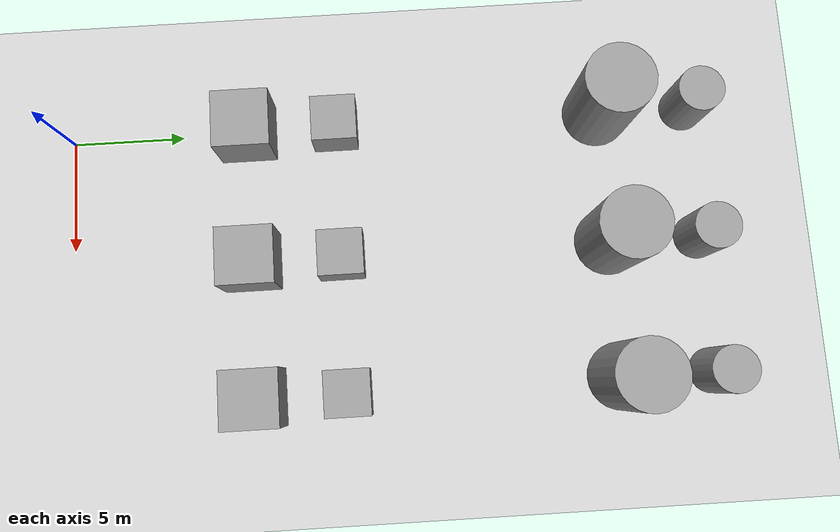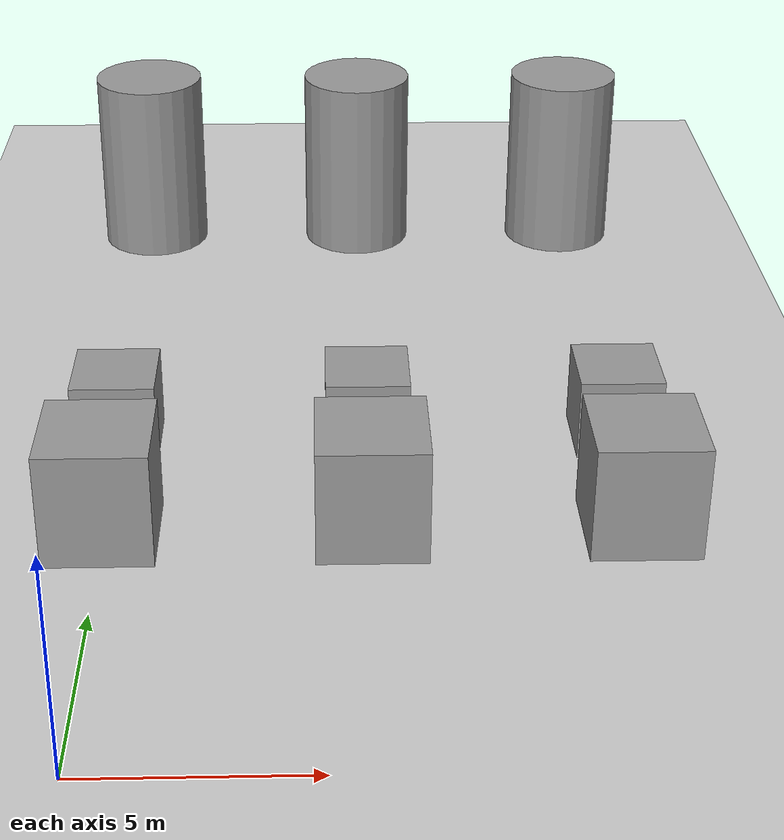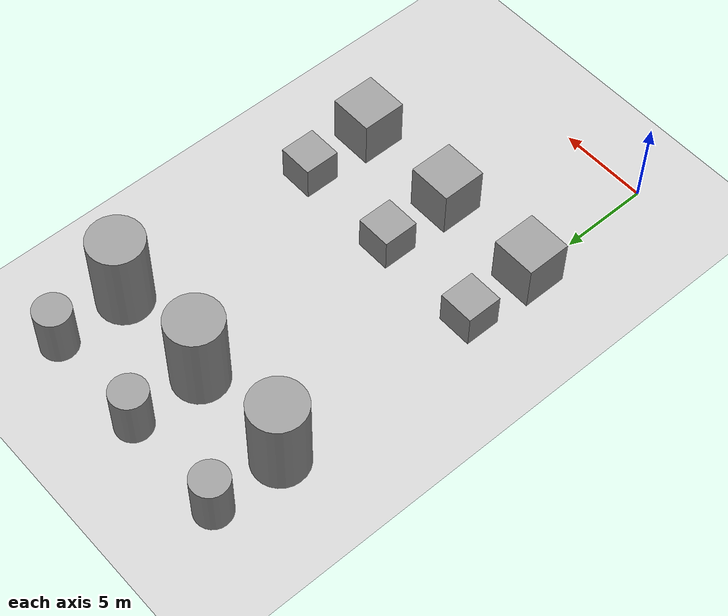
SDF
<sdf version="1.6">
 <world name="default">
  <model name="ground_plane">
   <static>1</static>
   <link name="link">
    <collision name="collision">
     <geometry><plane><normal>0 0 1</normal><size>100 100</size></plane></geometry>
     <surface>
      <contact><collide_bitmask>65535</collide_bitmask></contact>
      <friction><ode><mu>100</mu><mu2>50</mu2></ode></friction>
     </surface>
    </collision>
    <visual name="visual">
     <cast_shadows>0</cast_shadows>
     <geometry><plane><normal>0 0 1</normal><size>100 100</size></plane></geometry>
     <material>
      <script><uri>file://media/materials/scripts/gazebo.material</uri><name>Gazebo/Grey</name></script>
     </material>
    </visual>
   </link>
  </model>
  <light name="sun" type="directional">
   <pose>0 0 10 0 -0 0</pose>
   <diffuse>0.8 0.8 0.8 1</diffuse>
   <specular>0.2 0.2 0.2 1</specular>
   <attenuation>
    <range>1000</range>
    <constant>0.9</constant>
    <linear>0.01</linear>
    <quadratic>0.001</quadratic>
   </attenuation>
   <direction>-0.5 0.1 -0.9</direction>
  </light>
  <scene><shadows>0</shadows><ambient>0.4 0.4 0.4 1</ambient><background>0.7 0.7 0.7 1</background></scene>
  <plugin name="gazebo_octomap" filename="librotors_gazebo_octomap_plugin.so"/>
  <plugin name="ros_interface_plugin" filename="librotors_gazebo_ros_interface_plugin.so"/>
  <physics name="default_physics" default="0" type="ode">
   <max_step_size>0.005</max_step_size>
   <real_time_factor>1</real_time_factor>
   <real_time_update_rate>600</real_time_update_rate>
   <ode>
    <solver>
     <type>quick</type>
     <iters>1000</iters>
     <sor>1.3</sor>
     <use_dynamic_moi_rescaling>0</use_dynamic_moi_rescaling>
    </solver>
    <constraints>
     <cfm>0</cfm>
     <erp>0.2</erp>
     <contact_max_correcting_vel>100</contact_max_correcting_vel>
     <contact_surface_layer>0.001</contact_surface_layer>
    </constraints>
   </ode>
  </physics>
  <gravity>0 0 -9.8</gravity>
  <magnetic_field>6e-06 2.3e-05 -4.2e-05</magnetic_field>
  <atmosphere type="adiabatic"/>
  <audio><device>default</device></audio>
  <spherical_coordinates>
   <surface_model>EARTH_WGS84</surface_model>
   <latitude_deg>0</latitude_deg>
   <longitude_deg>0</longitude_deg>
   <elevation>0</elevation>
   <heading_deg>0</heading_deg>
  </spherical_coordinates>
  <model name="large_box_0">
   <static>1</static>
   <pose>0 8 1.25 0 -0 0</pose>
   <link name="link">
    <inertial>
     <mass>1</mass>
     <inertia><ixx>0.1</ixx><ixy>0</ixy><ixz>0</ixz><iyy>0.1</iyy><iyz>0</iyz><izz>0.1</izz></inertia>
    </inertial>
    <collision name="collision"><geometry><box><size>2.5 2.5 3</size></box></geometry></collision>
    <visual name="visual">
     <geometry><box><size>2.5 2.5 3</size></box></geometry>
     <material>
      <script><name>Gazebo/Grey</name><uri>file://media/materials/scripts/gazebo.material</uri></script>
     </material>
    </visual>
   </link>
  </model>
  <model name="large_box_1">
   <static>1</static>
   <pose>6 8 1.25 0 -0 0</pose>
   <link name="link">
    <inertial>
     <mass>1</mass>
     <inertia><ixx>0.1</ixx><ixy>0</ixy><ixz>0</ixz><iyy>0.1</iyy><iyz>0</iyz><izz>0.1</izz></inertia>
    </inertial>
    <collision name="collision"><geometry><box><size>2.5 2.5 3</size></box></geometry></collision>
    <visual name="visual">
     <geometry><box><size>2.5 2.5 3</size></box></geometry>
     <material>
      <script><name>Gazebo/Grey</name><uri>file://media/materials/scripts/gazebo.material</uri></script>
     </material>
    </visual>
   </link>
  </model>
  <model name="large_box_2">
   <static>1</static>
   <pose>12 8 1.25 0 -0 0</pose>
   <link name="link">
    <inertial>
     <mass>1</mass>
     <inertia><ixx>0.1</ixx><ixy>0</ixy><ixz>0</ixz><iyy>0.1</iyy><iyz>0</iyz><izz>0.1</izz></inertia>
    </inertial>
    <collision name="collision"><geometry><box><size>2.5 2.5 3</size></box></geometry></collision>
    <visual name="visual">
     <geometry><box><size>2.5 2.5 3</size></box></geometry>
     <material>
      <script><name>Gazebo/Grey</name><uri>file://media/materials/scripts/gazebo.material</uri></script>
     </material>
    </visual>
   </link>
  </model>
  <model name="medium_box_0">
   <static>1</static>
   <pose>0 12 1 0 -0 0</pose>
   <link name="link">
    <inertial>
     <mass>1</mass>
     <inertia><ixx>0.1</ixx><ixy>0</ixy><ixz>0</ixz><iyy>0.1</iyy><iyz>0</iyz><izz>0.1</izz></inertia>
    </inertial>
    <collision name="collision"><geometry><box><size>1.5 1.5 1.5</size></box></geometry></collision>
    <visual name="visual">
     <geometry><box><size>2 2 2</size></box></geometry>
     <material>
      <script><name>Gazebo/Grey</name><uri>file://media/materials/scripts/gazebo.material</uri></script>
     </material>
    </visual>
   </link>
  </model>
  <model name="medium_box_1">
   <static>1</static>
   <pose>6 12 1 0 -0 0</pose>
   <link name="link">
    <inertial>
     <mass>1</mass>
     <inertia><ixx>0.1</ixx><ixy>0</ixy><ixz>0</ixz><iyy>0.1</iyy><iyz>0</iyz><izz>0.1</izz></inertia>
    </inertial>
    <collision name="collision"><geometry><box><size>1.5 1.5 1.5</size></box></geometry></collision>
    <visual name="visual">
     <geometry><box><size>2 2 2</size></box></geometry>
     <material>
      <script><name>Gazebo/Grey</name><uri>file://media/materials/scripts/gazebo.material</uri></script>
     </material>
    </visual>
   </link>
  </model>
  <model name="medium_box_2">
   <static>1</static>
   <pose>12 12 1 0 -0 0</pose>
   <link name="link">
    <inertial>
     <mass>1</mass>
     <inertia><ixx>0.1</ixx><ixy>0</ixy><ixz>0</ixz><iyy>0.1</iyy><iyz>0</iyz><izz>0.1</izz></inertia>
    </inertial>
    <collision name="collision"><geometry><box><size>1.5 1.5 1.5</size></box></geometry></collision>
    <visual name="visual">
     <geometry><box><size>2 2 2</size></box></geometry>
     <material>
      <script><name>Gazebo/Grey</name><uri>file://media/materials/scripts/gazebo.material</uri></script>
     </material>
    </visual>
   </link>
  </model>
  <model name="large_cylinder_0">
   <static>1</static>
   <pose>0 24 2.5 0 -0 0</pose>
   <link name="link">
    <inertial>
     <mass>1</mass>
     <inertia><ixx>0.1</ixx><ixy>0</ixy><ixz>0</ixz><iyy>0.1</iyy><iyz>0</iyz><izz>0.1</izz></inertia>
    </inertial>
    <collision name="collision">
     <geometry><cylinder><radius>1.5</radius><length>5</length></cylinder></geometry>
    </collision>
    <visual name="visual">
     <geometry><cylinder><radius>1.5</radius><length>5</length></cylinder></geometry>
     <material>
      <script><name>Gazebo/Grey</name><uri>file://media/materials/scripts/gazebo.material</uri></script>
     </material>
    </visual>
   </link>
  </model>
  <model name="large_cylinder_1">
   <static>1</static>
   <pose>6 24 2.5 0 -0 0</pose>
   <link name="link">
    <inertial>
     <mass>1</mass>
     <inertia><ixx>0.1</ixx><ixy>0</ixy><ixz>0</ixz><iyy>0.1</iyy><iyz>0</iyz><izz>0.1</izz></inertia>
    </inertial>
    <collision name="collision">
     <geometry><cylinder><radius>1.5</radius><length>5</length></cylinder></geometry>
    </collision>
    <visual name="visual">
     <geometry><cylinder><radius>1.5</radius><length>5</length></cylinder></geometry>
     <material>
      <script><name>Gazebo/Grey</name><uri>file://media/materials/scripts/gazebo.material</uri></script>
     </material>
    </visual>
   </link>
  </model>
  <model name="large_cylinder_2">
   <static>1</static>
   <pose>12 24 2.5 0 -0 0</pose>
   <link name="link">
    <inertial>
     <mass>1</mass>
     <inertia><ixx>0.1</ixx><ixy>0</ixy><ixz>0</ixz><iyy>0.1</iyy><iyz>0</iyz><izz>0.1</izz></inertia>
    </inertial>
    <collision name="collision">
     <geometry><cylinder><radius>1.5</radius><length>5</length></cylinder></geometry>
    </collision>
    <visual name="visual">
     <geometry><cylinder><radius>1.5</radius><length>5</length></cylinder></geometry>
     <material>
      <script><name>Gazebo/Grey</name><uri>file://media/materials/scripts/gazebo.material</uri></script>
     </material>
    </visual>
   </link>
  </model>
  <model name="medium_cylinder_0">
   <static>1</static>
   <pose>0 28 1.5 0 -0 0</pose>
   <link name="link">
    <inertial>
     <mass>1</mass>
     <inertia><ixx>0.1</ixx><ixy>0</ixy><ixz>0</ixz><iyy>0.1</iyy><iyz>0</iyz><izz>0.1</izz></inertia>
    </inertial>
    <collision name="collision">
     <geometry><cylinder><radius>1</radius><length>3</length></cylinder></geometry>
    </collision>
    <visual name="visual">
     <geometry><cylinder><radius>1</radius><length>3</length></cylinder></geometry>
     <material>
      <script><name>Gazebo/Grey</name><uri>file://media/materials/scripts/gazebo.material</uri></script>
     </material>
    </visual>
   </link>
  </model>
  <model name="medium_cylinder_1">
   <static>1</static>
   <pose>6 28 1.5 0 -0 0</pose>
   <link name="link">
    <inertial>
     <mass>1</mass>
     <inertia><ixx>0.1</ixx><ixy>0</ixy><ixz>0</ixz><iyy>0.1</iyy><iyz>0</iyz><izz>0.1</izz></inertia>
    </inertial>
    <collision name="collision">
     <geometry><cylinder><radius>1</radius><length>3</length></cylinder></geometry>
    </collision>
    <visual name="visual">
     <geometry><cylinder><radius>1</radius><length>3</length></cylinder></geometry>
     <material>
      <script><name>Gazebo/Grey</name><uri>file://media/materials/scripts/gazebo.material</uri></script>
     </material>
    </visual>
   </link>
  </model>
  <model name="medium_cylinder_2">
   <static>1</static>
   <pose>12 28 1.5 0 -0 0</pose>
   <link name="link">
    <inertial>
     <mass>1</mass>
     <inertia><ixx>0.1</ixx><ixy>0</ixy><ixz>0</ixz><iyy>0.1</iyy><iyz>0</iyz><izz>0.1</izz></inertia>
    </inertial>
    <collision name="collision">
     <geometry><cylinder><radius>1</radius><length>3</length></cylinder></geometry>
    </collision>
    <visual name="visual">
     <geometry><cylinder><radius>1</radius><length>3</length></cylinder></geometry>
     <material>
      <script><name>Gazebo/Grey</name><uri>file://media/materials/scripts/gazebo.material</uri></script>
     </material>
    </visual>
   </link>
  </model>
 </world>
</sdf>
